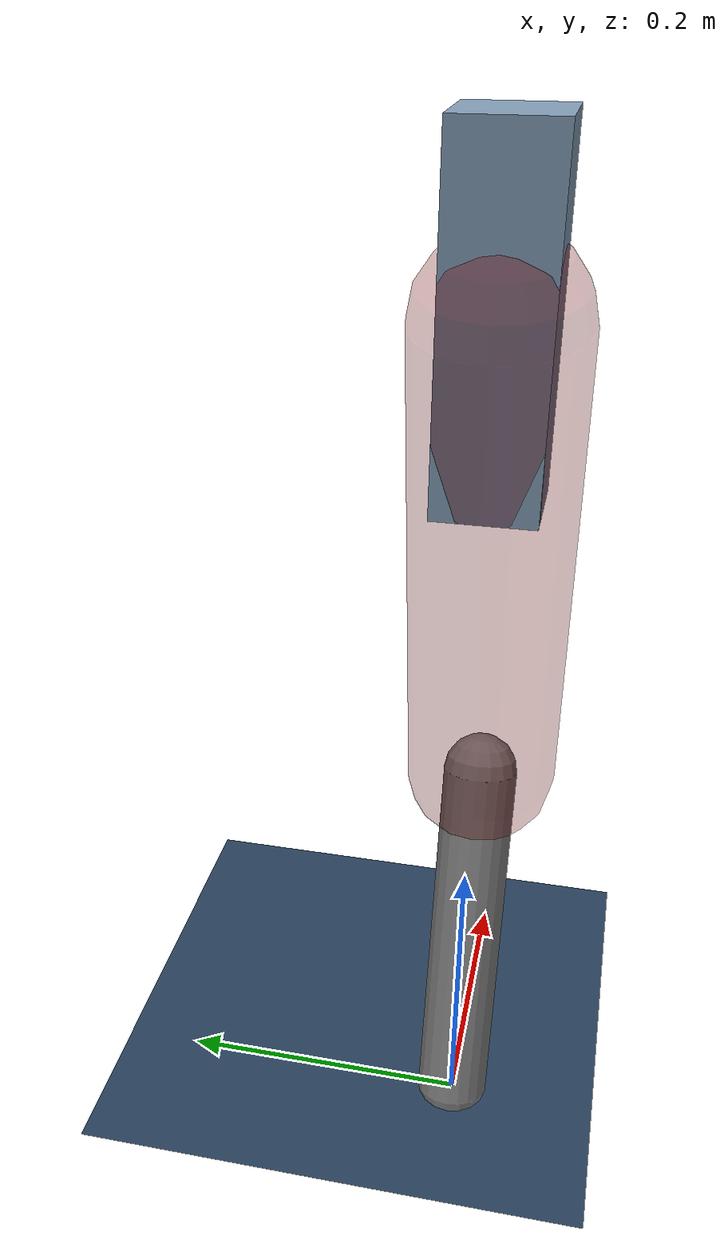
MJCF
<mujoco model="Hopper2D">
	<compiler inertiafromgeom="true" angle="radian" />
	<option timestep="0.001" integrator="implicit" cone="elliptic" solver="Newton" tolerance="1e-10" />

	<default>
		<geom contype="1" conaffinity="1" condim="3" friction="2 0.005 0.0001" solref="0.005 1" />
		<joint limited="true" damping="0.1" />
	</default>

	<asset>
		<texture name="skybox" type="skybox" builtin="gradient" rgb1=".4 .6 .8" rgb2="0 0 0" width="800" height="800" />
		<texture name="grid" type="2d" builtin="checker" rgb1=".1 .2 .3" rgb2=".2 .3 .4" width="300" height="300" mark="edge" markrgb=".2 .3 .4" />
		<material name="ground" texture="grid" texrepeat="1 1" texuniform="true" reflectance="0.1" />
		<material name="leg" rgba="0.5 0.6 0.7 1" />
	</asset>

	<worldbody>

		<geom name="floor" type="plane" size="5 5 0.25" material="ground" />

		<light directional="false" diffuse="0.8 0.8 0.8" specular="0.3 0.3 0.3" pos="0 0 2" dir="0 0 -1" />
		<light mode="targetbodycom" target="base" directional="false" diffuse="0.8 0.8 0.8" specular="0.3 0.3 0.3" pos="0 0 2" dir="0 0 -1" />

		<camera name="fixed" pos="0 -2 1" xyaxes="1 0 0 0 0 1" />
		<camera name="tracking" mode="trackcom" pos="0 -3 1" />

		<body name="root" pos="0 0 0.5644894086126695">
			<joint name="slide_x" type="slide" axis="1 0 0" range="-100 100" />
			<joint name="slide_z" type="slide" axis="0 0 1" range="0 10" />

			<body name="base" pos="0 0 0">
				<geom name="torso" type="box" size="0.03 0.03 0.1" mass="2.31" material="leg" />

				<body name="link1" pos="0 0 0" euler="0 1.3859108463059033 0">
					<joint type="hinge" axis="0 -1 0" pos="0 0 0" name="hinge1" limited="true" range="-3.14 3.14" stiffness="0" damping="0.1" />
					<geom name="thigh" type="capsule" fromto="0 0 0 0.3220597815930821 0 0" size="0.05" rgba="0.5 0 0 0.3" mass="1.0488673884606297" />

					<body name="link2" pos="0.3220597815930821 0 0" euler="0 0.4193054876659057 0">
						<joint type="hinge" axis="0 -1 0" pos="0 0 0" name="hinge2" limited="true" range="-3.14 3.14" stiffness="0" damping="0.1" />
						<geom name="shank" type="capsule" fromto="0 0 0 0.25488982644041 0 0" size="0.025" mass="0.446511861152328" />

					</body>
				</body>
			</body>
		</body>
	</worldbody>

	<actuator>
		<motor name="torque1" joint="hinge1" ctrlrange="-62.65670025501735 62.65670025501735" ctrllimited="true" gear="1" />
		<motor name="torque2" joint="hinge2" ctrlrange="-103.29421867307326 103.29421867307326" ctrllimited="true" gear="1" />
	</actuator>
</mujoco>
